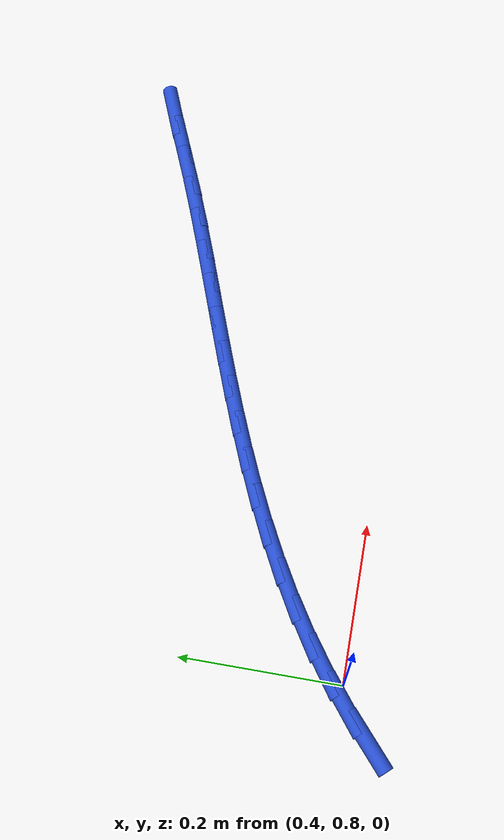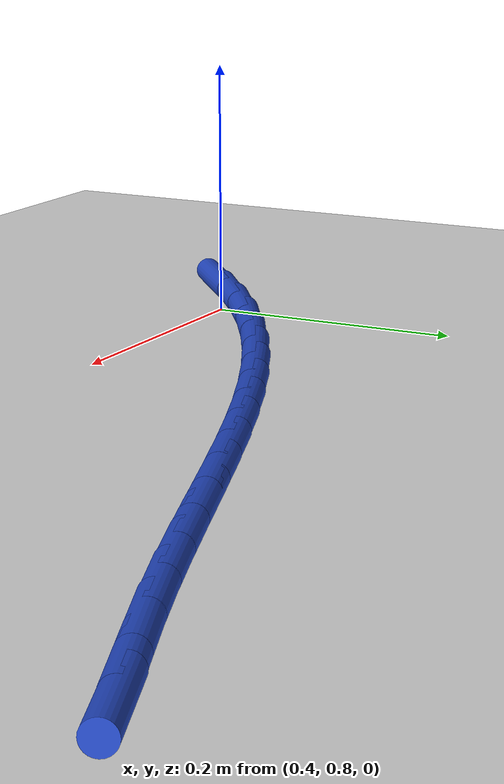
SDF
<sdf version="1.6">
 <world name="default">
  <model name="ground_plane">
   <static>1</static>
   <link name="link">
    <collision name="collision">
     <geometry><plane><normal>0 0 1</normal><size>100 100</size></plane></geometry>
     <surface><friction><ode><mu>100</mu><mu2>50</mu2></ode></friction></surface>
    </collision>
    <visual name="visual">
     <cast_shadows>0</cast_shadows>
     <geometry><plane><normal>0 0 1</normal><size>100 100</size></plane></geometry>
     <material>
      <script><uri>file://media/materials/scripts/gazebo.material</uri><name>Gazebo/WhiteGlow</name></script>
     </material>
    </visual>
   </link>
  </model>
  <model name="line">
   <link name="link_17">
    <pose>0.33967692570980523 0.7639467257577449 0.01 0 1.57 0.7159721910976955</pose>
    <collision name="collision">
     <geometry><cylinder><radius>0.01</radius><length>0.08</length></cylinder></geometry>
    </collision>
    <visual name="visual">
     <material>
      <script><name>Gazebo/Blue</name><uri>file://media/materials/scripts/gazebo.material</uri></script>
     </material>
     <geometry><cylinder><radius>0.01</radius><length>0.08</length></cylinder></geometry>
    </visual>
   </link>
   <link name="link_18">
    <pose>0.377560378103967 0.7969040698738049 0.01 0 1.57 0.662807962164855</pose>
    <collision name="collision">
     <geometry><cylinder><radius>0.01</radius><length>0.08</length></cylinder></geometry>
    </collision>
    <visual name="visual">
     <material>
      <script><name>Gazebo/Blue</name><uri>file://media/materials/scripts/gazebo.material</uri></script>
     </material>
     <geometry><cylinder><radius>0.01</radius><length>0.08</length></cylinder></geometry>
    </visual>
   </link>
   <link name="link_19">
    <pose>0.4169414049114941 0.8276454530253416 0.01 0 1.57 0.6086385172632076</pose>
    <collision name="collision">
     <geometry><cylinder><radius>0.01</radius><length>0.08</length></cylinder></geometry>
    </collision>
    <visual name="visual">
     <material>
      <script><name>Gazebo/Blue</name><uri>file://media/materials/scripts/gazebo.material</uri></script>
     </material>
     <geometry><cylinder><radius>0.01</radius><length>0.08</length></cylinder></geometry>
    </visual>
   </link>
   <link name="link_20">
    <pose>0.45772782872288853 0.8560692767457684 0.01 0 1.57 0.5580137965625362</pose>
    <collision name="collision">
     <geometry><cylinder><radius>0.01</radius><length>0.08</length></cylinder></geometry>
    </collision>
    <visual name="visual">
     <material>
      <script><name>Gazebo/Blue</name><uri>file://media/materials/scripts/gazebo.material</uri></script>
     </material>
     <geometry><cylinder><radius>0.01</radius><length>0.08</length></cylinder></geometry>
    </visual>
   </link>
   <link name="link_21">
    <pose>0.49979644111768334 0.8823279181961199 0.01 0 1.57 0.5127230814076948</pose>
    <collision name="collision">
     <geometry><cylinder><radius>0.01</radius><length>0.08</length></cylinder></geometry>
    </collision>
    <visual name="visual">
     <material>
      <script><name>Gazebo/Blue</name><uri>file://media/materials/scripts/gazebo.material</uri></script>
     </material>
     <geometry><cylinder><radius>0.01</radius><length>0.08</length></cylinder></geometry>
    </visual>
   </link>
   <link name="link_22">
    <pose>0.5430138967645544 0.906656720841677 0.01 0 1.57 0.472970089407893</pose>
    <collision name="collision">
     <geometry><cylinder><radius>0.01</radius><length>0.08</length></cylinder></geometry>
    </collision>
    <visual name="visual">
     <material>
      <script><name>Gazebo/Blue</name><uri>file://media/materials/scripts/gazebo.material</uri></script>
     </material>
     <geometry><cylinder><radius>0.01</radius><length>0.08</length></cylinder></geometry>
    </visual>
   </link>
   <link name="link_23">
    <pose>0.5872468446403787 0.9292910747326818 0.01 0 1.57 0.4388379528739432</pose>
    <collision name="collision">
     <geometry><cylinder><radius>0.01</radius><length>0.08</length></cylinder></geometry>
    </collision>
    <visual name="visual">
     <material>
      <script><name>Gazebo/Blue</name><uri>file://media/materials/scripts/gazebo.material</uri></script>
     </material>
     <geometry><cylinder><radius>0.01</radius><length>0.08</length></cylinder></geometry>
    </visual>
   </link>
   <link name="link_24">
    <pose>0.6323619337220321 0.9504663699193746 0.01 0 1.57 0.4103255392657004</pose>
    <collision name="collision">
     <geometry><cylinder><radius>0.01</radius><length>0.08</length></cylinder></geometry>
    </collision>
    <visual name="visual">
     <material>
      <script><name>Gazebo/Blue</name><uri>file://media/materials/scripts/gazebo.material</uri></script>
     </material>
     <geometry><cylinder><radius>0.01</radius><length>0.08</length></cylinder></geometry>
    </visual>
   </link>
   <link name="link_25">
    <pose>0.6782258129863914 0.9704179964519971 0.01 0 1.57 0.38737990083896984</pose>
    <collision name="collision">
     <geometry><cylinder><radius>0.01</radius><length>0.08</length></cylinder></geometry>
    </collision>
    <visual name="visual">
     <material>
      <script><name>Gazebo/Blue</name><uri>file://media/materials/scripts/gazebo.material</uri></script>
     </material>
     <geometry><cylinder><radius>0.01</radius><length>0.08</length></cylinder></geometry>
    </visual>
   </link>
   <link name="link_26">
    <pose>0.7247051314103325 0.9893813443807903 0.01 0 1.57 0.36992336359389655</pose>
    <collision name="collision">
     <geometry><cylinder><radius>0.01</radius><length>0.08</length></cylinder></geometry>
    </collision>
    <visual name="visual">
     <material>
      <script><name>Gazebo/Blue</name><uri>file://media/materials/scripts/gazebo.material</uri></script>
     </material>
     <geometry><cylinder><radius>0.01</radius><length>0.08</length></cylinder></geometry>
    </visual>
   </link>
   <link name="link_27">
    <pose>0.7716665379707326 1.0075918037559957 0.01 0 1.57 0.3578745169798947</pose>
    <collision name="collision">
     <geometry><cylinder><radius>0.01</radius><length>0.08</length></cylinder></geometry>
    </collision>
    <visual name="visual">
     <material>
      <script><name>Gazebo/Blue</name><uri>file://media/materials/scripts/gazebo.material</uri></script>
     </material>
     <geometry><cylinder><radius>0.01</radius><length>0.08</length></cylinder></geometry>
    </visual>
   </link>
   <link name="link_28">
    <pose>0.8189766816444677 1.0252847646278542 0.01 0 1.57 0.35116330078935415</pose>
    <collision name="collision">
     <geometry><cylinder><radius>0.01</radius><length>0.08</length></cylinder></geometry>
    </collision>
    <visual name="visual">
     <material>
      <script><name>Gazebo/Blue</name><uri>file://media/materials/scripts/gazebo.material</uri></script>
     </material>
     <geometry><cylinder><radius>0.01</radius><length>0.08</length></cylinder></geometry>
    </visual>
   </link>
   <link name="link_29">
    <pose>0.866502211408414 1.0426956170466073 0.01 0 1.57 0.3497407829168274</pose>
    <collision name="collision">
     <geometry><cylinder><radius>0.01</radius><length>0.08</length></cylinder></geometry>
    </collision>
    <visual name="visual">
     <material>
      <script><name>Gazebo/Blue</name><uri>file://media/materials/scripts/gazebo.material</uri></script>
     </material>
     <geometry><cylinder><radius>0.01</radius><length>0.08</length></cylinder></geometry>
    </visual>
   </link>
   <link name="link_30">
    <pose>0.9141097762394482 1.0600597510624958 0.01 0 1.57 0.353584252421457</pose>
    <collision name="collision">
     <geometry><cylinder><radius>0.01</radius><length>0.08</length></cylinder></geometry>
    </collision>
    <visual name="visual">
     <material>
      <script><name>Gazebo/Blue</name><uri>file://media/materials/scripts/gazebo.material</uri></script>
     </material>
     <geometry><cylinder><radius>0.01</radius><length>0.08</length></cylinder></geometry>
    </visual>
   </link>
   <link name="link_31">
    <pose>0.9616660251144468 1.0776125567257615 0.01 0 1.57 0.3626980707452565</pose>
    <collision name="collision">
     <geometry><cylinder><radius>0.01</radius><length>0.08</length></cylinder></geometry>
    </collision>
    <visual name="visual">
     <material>
      <script><name>Gazebo/Blue</name><uri>file://media/materials/scripts/gazebo.material</uri></script>
     </material>
     <geometry><cylinder><radius>0.01</radius><length>0.08</length></cylinder></geometry>
    </visual>
   </link>
   <link name="link_32">
    <pose>1.0090376070102858 1.095589424086645 0.01 0 1.57 0.3771104457581654</pose>
    <collision name="collision">
     <geometry><cylinder><radius>0.01</radius><length>0.08</length></cylinder></geometry>
    </collision>
    <visual name="visual">
     <material>
      <script><name>Gazebo/Blue</name><uri>file://media/materials/scripts/gazebo.material</uri></script>
     </material>
     <geometry><cylinder><radius>0.01</radius><length>0.08</length></cylinder></geometry>
    </visual>
   </link>
   <link name="link_33">
    <pose>1.0560911709038419 1.114225743195388 0.01 0 1.57 0.39311466043362875</pose>
    <collision name="collision">
     <geometry><cylinder><radius>0.01</radius><length>0.08</length></cylinder></geometry>
    </collision>
    <visual name="visual">
     <material>
      <script><name>Gazebo/Blue</name><uri>file://media/materials/scripts/gazebo.material</uri></script>
     </material>
     <geometry><cylinder><radius>0.01</radius><length>0.08</length></cylinder></geometry>
    </visual>
   </link>
   <link name="link_34">
    <pose>1.102762505744604 1.1335803703496343 0.01 0 1.57 0.3952872805518839</pose>
    <collision name="collision">
     <geometry><cylinder><radius>0.01</radius><length>0.08</length></cylinder></geometry>
    </collision>
    <visual name="visual">
     <material>
      <script><name>Gazebo/Blue</name><uri>file://media/materials/scripts/gazebo.material</uri></script>
     </material>
     <geometry><cylinder><radius>0.01</radius><length>0.08</length></cylinder></geometry>
    </visual>
   </link>
   <link name="link_35">
    <pose>1.1492716919898036 1.15298628584799 0.01 0 1.57 0.37953694766471235</pose>
    <collision name="collision">
     <geometry><cylinder><radius>0.01</radius><length>0.08</length></cylinder></geometry>
    </collision>
    <visual name="visual">
     <material>
      <script><name>Gazebo/Blue</name><uri>file://media/materials/scripts/gazebo.material</uri></script>
     </material>
     <geometry><cylinder><radius>0.01</radius><length>0.08</length></cylinder></geometry>
    </visual>
   </link>
  </model>
 </world>
</sdf>
